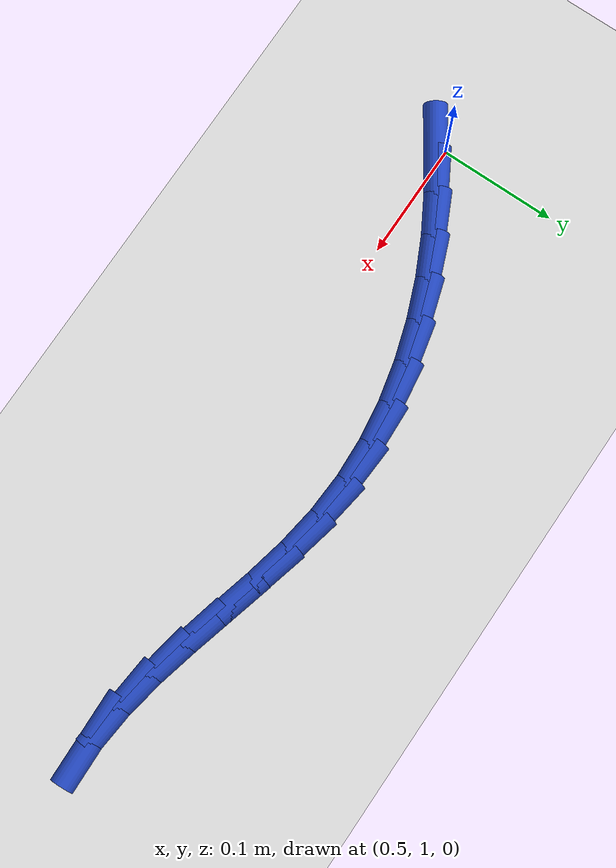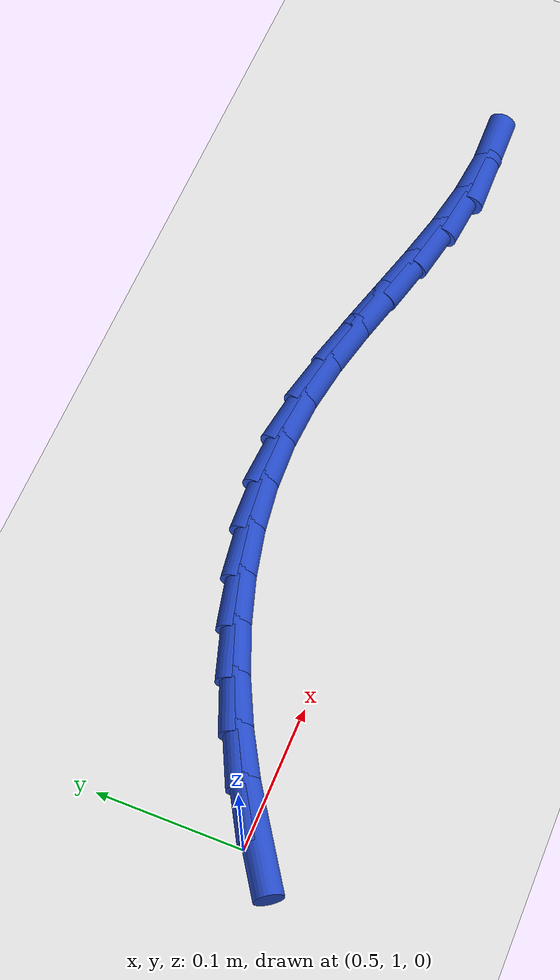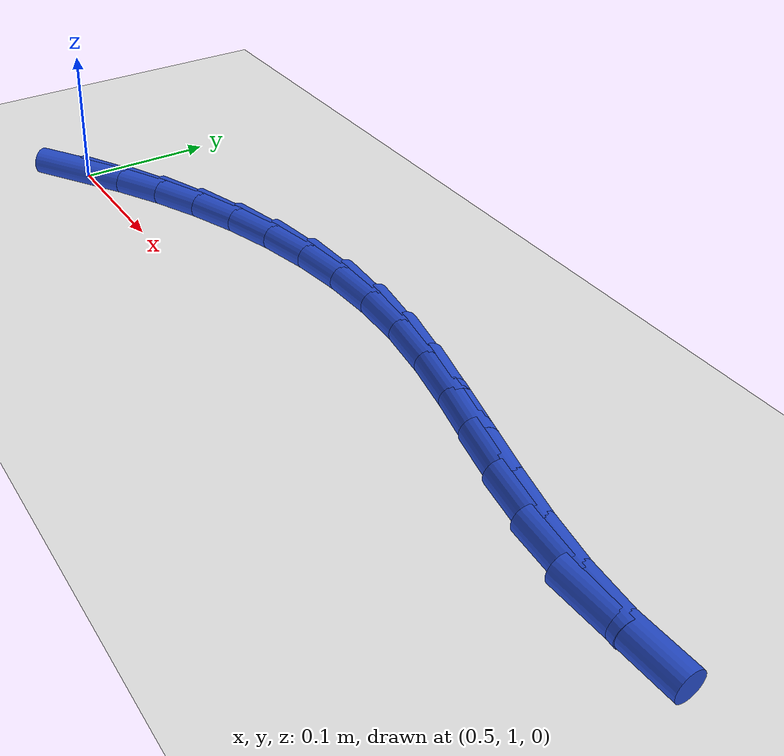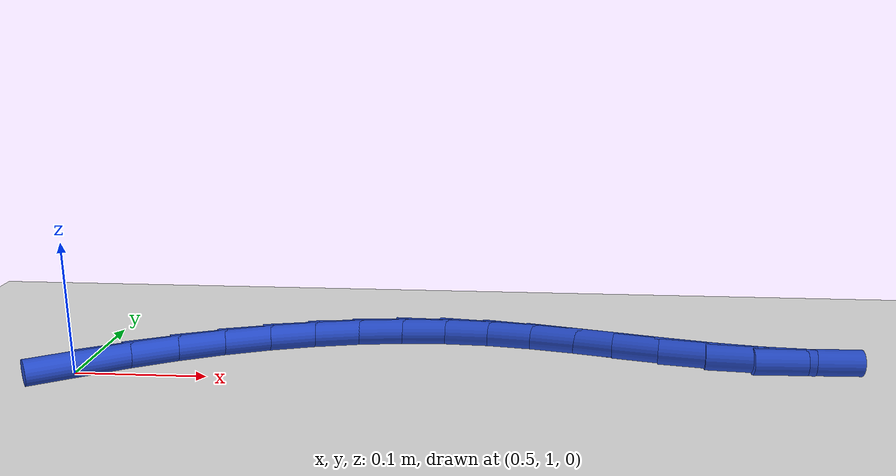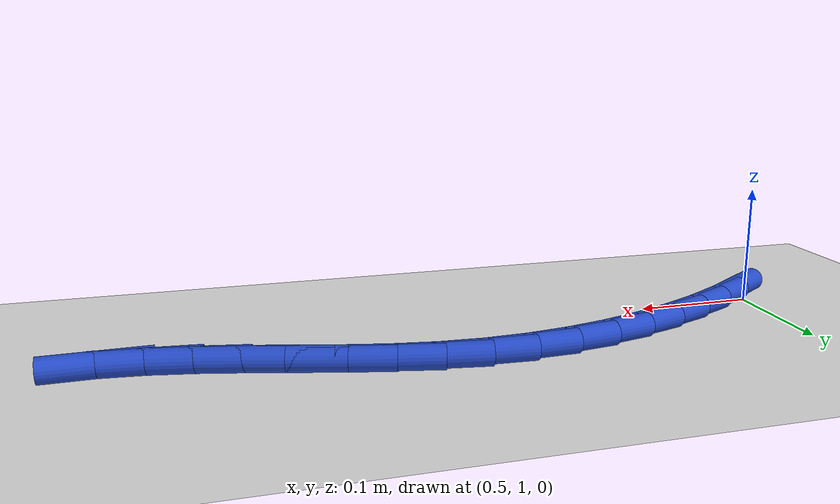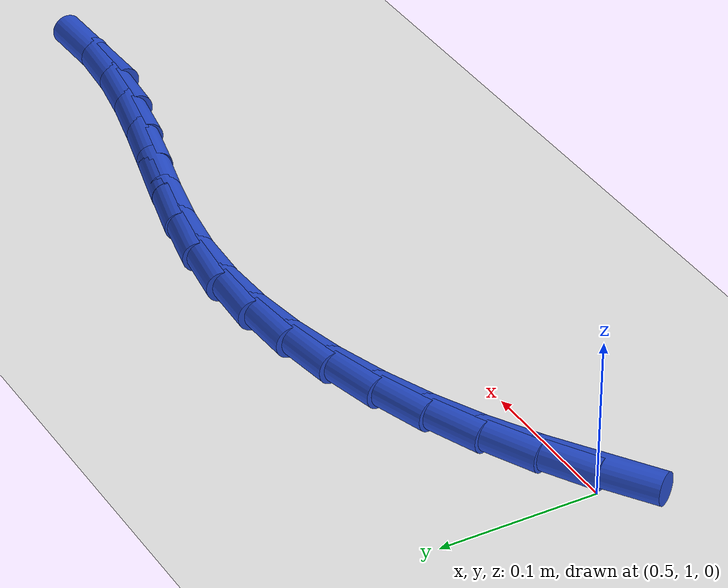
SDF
<sdf version="1.6">
 <world name="default">
  <model name="ground_plane">
   <static>1</static>
   <link name="link">
    <collision name="collision">
     <geometry><plane><normal>0 0 1</normal><size>100 100</size></plane></geometry>
     <surface><friction><ode><mu>100</mu><mu2>50</mu2></ode></friction></surface>
    </collision>
    <visual name="visual">
     <cast_shadows>0</cast_shadows>
     <geometry><plane><normal>0 0 1</normal><size>100 100</size></plane></geometry>
     <material>
      <script><uri>file://media/materials/scripts/gazebo.material</uri><name>Gazebo/WhiteGlow</name></script>
     </material>
    </visual>
   </link>
  </model>
  <model name="line">
   <link name="link_33">
    <pose>0.5075100022224032 0.994532976836554 0.01 0 1.57 0.589482308079695</pose>
    <collision name="collision">
     <geometry><cylinder><radius>0.01</radius><length>0.08</length></cylinder></geometry>
    </collision>
    <visual name="visual">
     <material>
      <script><name>Gazebo/Blue</name><uri>file://media/materials/scripts/gazebo.material</uri></script>
     </material>
     <geometry><cylinder><radius>0.01</radius><length>0.08</length></cylinder></geometry>
    </visual>
   </link>
   <link name="link_34">
    <pose>0.5371891426423897 1.0143825678746905 0.01 0 1.57 0.5224108010826641</pose>
    <collision name="collision">
     <geometry><cylinder><radius>0.01</radius><length>0.08</length></cylinder></geometry>
    </collision>
    <visual name="visual">
     <material>
      <script><name>Gazebo/Blue</name><uri>file://media/materials/scripts/gazebo.material</uri></script>
     </material>
     <geometry><cylinder><radius>0.01</radius><length>0.08</length></cylinder></geometry>
    </visual>
   </link>
   <link name="link_35">
    <pose>0.5682612570286444 1.0322728780171904 0.01 0 1.57 0.45349003070293586</pose>
    <collision name="collision">
     <geometry><cylinder><radius>0.01</radius><length>0.08</length></cylinder></geometry>
    </collision>
    <visual name="visual">
     <material>
      <script><name>Gazebo/Blue</name><uri>file://media/materials/scripts/gazebo.material</uri></script>
     </material>
     <geometry><cylinder><radius>0.01</radius><length>0.08</length></cylinder></geometry>
    </visual>
   </link>
   <link name="link_36">
    <pose>0.6005087586085125 1.04798923819426 0.01 0 1.57 0.3816902012897755</pose>
    <collision name="collision">
     <geometry><cylinder><radius>0.01</radius><length>0.08</length></cylinder></geometry>
    </collision>
    <visual name="visual">
     <material>
      <script><name>Gazebo/Blue</name><uri>file://media/materials/scripts/gazebo.material</uri></script>
     </material>
     <geometry><cylinder><radius>0.01</radius><length>0.08</length></cylinder></geometry>
    </visual>
   </link>
   <link name="link_37">
    <pose>0.6337140606093397 1.0613169793361066 0.01 0 1.57 0.30600788919527205</pose>
    <collision name="collision">
     <geometry><cylinder><radius>0.01</radius><length>0.08</length></cylinder></geometry>
    </collision>
    <visual name="visual">
     <material>
      <script><name>Gazebo/Blue</name><uri>file://media/materials/scripts/gazebo.material</uri></script>
     </material>
     <geometry><cylinder><radius>0.01</radius><length>0.08</length></cylinder></geometry>
    </visual>
   </link>
   <link name="link_38">
    <pose>0.6676595762584705 1.0720414323729355 0.01 0 1.57 0.2254847870245804</pose>
    <collision name="collision">
     <geometry><cylinder><radius>0.01</radius><length>0.08</length></cylinder></geometry>
    </collision>
    <visual name="visual">
     <material>
      <script><name>Gazebo/Blue</name><uri>file://media/materials/scripts/gazebo.material</uri></script>
     </material>
     <geometry><cylinder><radius>0.01</radius><length>0.08</length></cylinder></geometry>
    </visual>
   </link>
   <link name="link_39">
    <pose>0.7021277187832511 1.079947928234954 0.01 0 1.57 0.13925456413899726</pose>
    <collision name="collision">
     <geometry><cylinder><radius>0.01</radius><length>0.08</length></cylinder></geometry>
    </collision>
    <visual name="visual">
     <material>
      <script><name>Gazebo/Blue</name><uri>file://media/materials/scripts/gazebo.material</uri></script>
     </material>
     <geometry><cylinder><radius>0.01</radius><length>0.08</length></cylinder></geometry>
    </visual>
   </link>
   <link name="link_40">
    <pose>0.7369009014110264 1.0848217978523687 0.01 0 1.57 0.046625524637756446</pose>
    <collision name="collision">
     <geometry><cylinder><radius>0.01</radius><length>0.08</length></cylinder></geometry>
    </collision>
    <visual name="visual">
     <material>
      <script><name>Gazebo/Blue</name><uri>file://media/materials/scripts/gazebo.material</uri></script>
     </material>
     <geometry><cylinder><radius>0.01</radius><length>0.08</length></cylinder></geometry>
    </visual>
   </link>
   <link name="link_41">
    <pose>0.7717615373691418 1.0864483721553855 0.01 0 1.57 -0.05277712604272131</pose>
    <collision name="collision">
     <geometry><cylinder><radius>0.01</radius><length>0.08</length></cylinder></geometry>
    </collision>
    <visual name="visual">
     <material>
      <script><name>Gazebo/Blue</name><uri>file://media/materials/scripts/gazebo.material</uri></script>
     </material>
     <geometry><cylinder><radius>0.01</radius><length>0.08</length></cylinder></geometry>
    </visual>
   </link>
   <link name="link_42">
    <pose>0.8064921868336514 1.084613684513014 0.01 0 1.57 -0.14932525937800892</pose>
    <collision name="collision">
     <geometry><cylinder><radius>0.01</radius><length>0.08</length></cylinder></geometry>
    </collision>
    <visual name="visual">
     <material>
      <script><name>Gazebo/Blue</name><uri>file://media/materials/scripts/gazebo.material</uri></script>
     </material>
     <geometry><cylinder><radius>0.01</radius><length>0.08</length></cylinder></geometry>
    </visual>
   </link>
   <link name="link_43">
    <pose>0.8409437844163282 1.0794306092507233 0.01 0 1.57 -0.21790726805308258</pose>
    <collision name="collision">
     <geometry><cylinder><radius>0.01</radius><length>0.08</length></cylinder></geometry>
    </collision>
    <visual name="visual">
     <material>
      <script><name>Gazebo/Blue</name><uri>file://media/materials/scripts/gazebo.material</uri></script>
     </material>
     <geometry><cylinder><radius>0.01</radius><length>0.08</length></cylinder></geometry>
    </visual>
   </link>
   <link name="link_44">
    <pose>0.8751442096425758 1.0718578462456734 0.01 0 1.57 -0.2551209355972846</pose>
    <collision name="collision">
     <geometry><cylinder><radius>0.01</radius><length>0.08</length></cylinder></geometry>
    </collision>
    <visual name="visual">
     <material>
      <script><name>Gazebo/Blue</name><uri>file://media/materials/scripts/gazebo.material</uri></script>
     </material>
     <geometry><cylinder><radius>0.01</radius><length>0.08</length></cylinder></geometry>
    </visual>
   </link>
   <link name="link_45">
    <pose>0.9091495868651253 1.06298911025715 0.01 0 1.57 -0.26170310792898993</pose>
    <collision name="collision">
     <geometry><cylinder><radius>0.01</radius><length>0.08</length></cylinder></geometry>
    </collision>
    <visual name="visual">
     <material>
      <script><name>Gazebo/Blue</name><uri>file://media/materials/scripts/gazebo.material</uri></script>
     </material>
     <geometry><cylinder><radius>0.01</radius><length>0.08</length></cylinder></geometry>
    </visual>
   </link>
   <link name="link_46">
    <pose>0.9430160404367084 1.0539181160444395 0.01 0 1.57 -0.23754405952323146</pose>
    <collision name="collision">
     <geometry><cylinder><radius>0.01</radius><length>0.08</length></cylinder></geometry>
    </collision>
    <visual name="visual">
     <material>
      <script><name>Gazebo/Blue</name><uri>file://media/materials/scripts/gazebo.material</uri></script>
     </material>
     <geometry><cylinder><radius>0.01</radius><length>0.08</length></cylinder></geometry>
    </visual>
   </link>
   <link name="link_47">
    <pose>0.9767996947100561 1.0457385783668263 0.01 0 1.57 -0.18147988965904932</pose>
    <collision name="collision">
     <geometry><cylinder><radius>0.01</radius><length>0.08</length></cylinder></geometry>
    </collision>
    <visual name="visual">
     <material>
      <script><name>Gazebo/Blue</name><uri>file://media/materials/scripts/gazebo.material</uri></script>
     </material>
     <geometry><cylinder><radius>0.01</radius><length>0.08</length></cylinder></geometry>
    </visual>
   </link>
   <link name="link_48">
    <pose>1.0105566740379 1.0395442119835967 0.01 0 1.57 -0.0919509711508859</pose>
    <collision name="collision">
     <geometry><cylinder><radius>0.01</radius><length>0.08</length></cylinder></geometry>
    </collision>
    <visual name="visual">
     <material>
      <script><name>Gazebo/Blue</name><uri>file://media/materials/scripts/gazebo.material</uri></script>
     </material>
     <geometry><cylinder><radius>0.01</radius><length>0.08</length></cylinder></geometry>
    </visual>
   </link>
   <link name="link_49">
    <pose>1.0443431027729708 1.0364287316540364 0.01 0 1.57 0.029942029799785563</pose>
    <collision name="collision">
     <geometry><cylinder><radius>0.01</radius><length>0.08</length></cylinder></geometry>
    </collision>
    <visual name="visual">
     <material>
      <script><name>Gazebo/Blue</name><uri>file://media/materials/scripts/gazebo.material</uri></script>
     </material>
     <geometry><cylinder><radius>0.01</radius><length>0.08</length></cylinder></geometry>
    </visual>
   </link>
  </model>
 </world>
</sdf>
